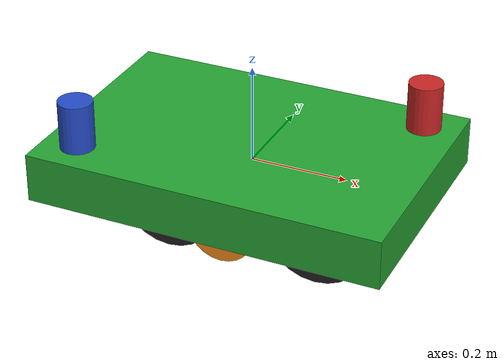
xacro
<?xml version="1.0"?>

<robot name="base" xmlns:xacro="http://ros.org/wiki/xacro">

  <!-- Define a number of dimensions using properties -->
  <xacro:property name="wheel_length" value="0.04" />
  <xacro:property name="wheel_radius" value="0.07" />
  <xacro:property name="wheel_offset_x" value="0" />
  <xacro:property name="wheel_offset_y" value="0.13" />
  <xacro:property name="wheel_offset_z" value="-0.08" />

  <xacro:property name="PI" value="3.1415926" />

  <!-- define a wheel -->
  <xacro:macro name="wheel" params="suffix parent reflect color">
    <joint name="${parent}_${suffix}_wheel_joint" type="continuous">
      <axis xyz="0 0 1" />
      <limit effort="100" velocity="100"/>
      <safety_controller k_velocity="10" />
      <origin xyz="${wheel_offset_x} ${reflect*wheel_offset_y} ${wheel_offset_z}" rpy="${reflect*PI/2} 0 0" />
      <parent link="base_footprint"/>
      <child link="${parent}_${suffix}_wheel_link"/>
    </joint>
    <link name="${parent}_${suffix}_wheel_link">
      <visual>
        <origin xyz="0 0 0" rpy="0 0 0" />
        <geometry>
          <cylinder radius="${wheel_radius}" length="${wheel_length}"/>
        </geometry>
        <material name="${color}" />
      </visual>
    </link>
  </xacro:macro>

  <!-- The base xacro macro -->
  <link name="base_footprint">
      <visual>
        <origin xyz="0 0 0" rpy="0 0 0" />
        <geometry>
          <cylinder length="0.001" radius="0.01"/>
        </geometry>
        <material name="Red" />
      </visual>
  </link>

 <link name="base_link">
      <visual>
        <origin xyz="0 0 0" rpy="0 0 0" />
        <geometry>
          <box size="0.731  0.501  0.1" />
        </geometry>
        <material name="TransparentGreen" />
      </visual>
  </link>

  <joint name="base_link_joint" type="fixed">
    <origin xyz="0 0 0" rpy="0 0 0" />
    <parent link="base_footprint"/>
    <child link="base_link" />
  </joint>

  <link name="front_driving_wheel">
    <visual>
      <geometry>
        <cylinder length="0.12" radius="0.11"/>
      </geometry>
      <origin xyz="0 0 0" rpy="1.57075 0 0"/>
      <material name="Black"/>
    </visual>
  </link>
  <joint name="front_driving_wheel_joint" type="fixed">
    <parent link="base_footprint"/>
    <child link="front_driving_wheel"/>
    <origin xyz="0.162 0 -0.1" rpy="0 0 0"/>
  </joint>

   <wheel parent="driven" suffix="l" reflect="1" color="Orange"/>
   <wheel parent="driven" suffix="r" reflect="-1" color="Orange"/>

<link name="back_driving_wheel">
    <visual>
      <geometry>
        <cylinder length="0.12" radius="0.11"/>
      </geometry>
      <origin xyz="0 0 0" rpy="1.57075 0 0"/>
      <material name="Black"/>
    </visual>
  </link>
  <joint name="back_driving_wheel_joint" type="fixed">
    <parent link="base_footprint"/>
    <child link="back_driving_wheel"/>
    <origin xyz="-0.162 0 -0.1" rpy="0 0 0"/>
  </joint>

   <link name="nav_lidar1">
      <visual>
        <origin xyz="0 0 0" rpy="0 0 0" />
        <geometry>
          <cylinder radius="0.035" length="0.1"/>
        </geometry>
        <material name="Red" />
      </visual>
  </link>

  <joint name="nav_lidar1_joint" type="fixed">
    <origin xyz="0.2918854 0.176833 0.1" rpy="0 0 0" />
    <parent link="base_footprint"/>
    <child link="nav_lidar1" />
  </joint>

  <link name="nav_lidar2">
      <visual>
        <origin xyz="0 0 0" rpy="0 0 0" />
        <geometry>
          <cylinder radius="0.035" length="0.1"/>
        </geometry>
        <material name="Blue" />
      </visual>
  </link>

  <joint name="nav_lidar2_joint" type="fixed">
    <origin xyz="-0.291781 -0.176833 0.1" rpy="0 0 0" />
    <parent link="base_footprint"/>
    <child link="nav_lidar2" />
  </joint>

</robot>
